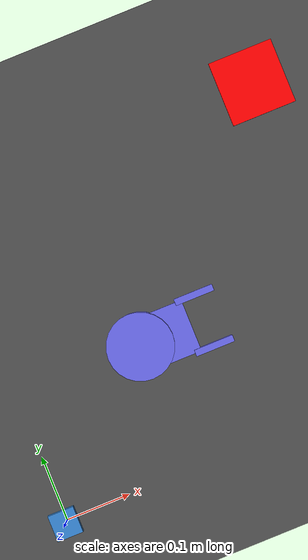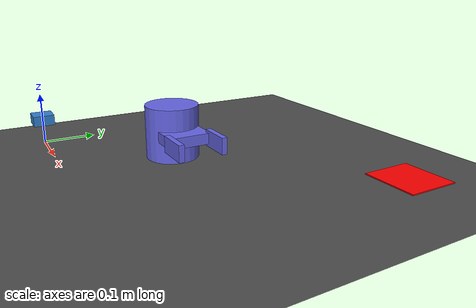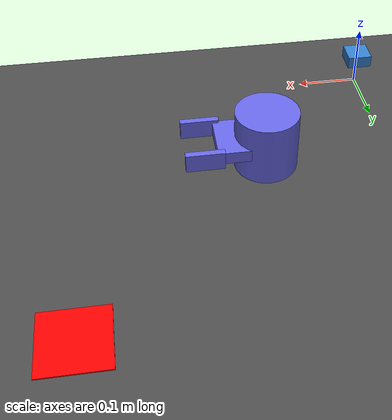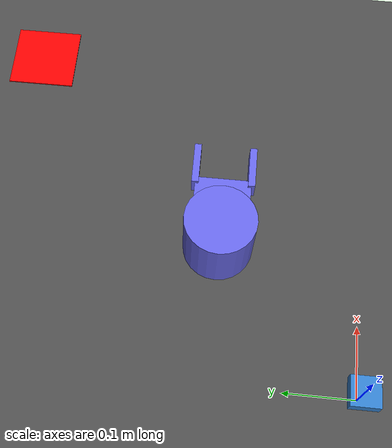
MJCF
<mujoco model="side_arm_bot">
    <compiler angle="radian"/>
    <option timestep="0.002" gravity="0 0 -9.81"/>

    <asset>
        <material name="ground_mat" rgba="0.3 0.3 0.3 1"/>
        <material name="block_mat" rgba="0.2 0.5 0.8 1"/>
        <material name="target_mat" rgba="1 0 0 1"/>
        <material name="robot_mat" rgba="0.4 0.4 0.9 1"/>
    </asset>

    <worldbody>
        <!-- Ground -->
        <geom name="ground" type="plane" size="2 2 0.1" pos="0 0 0" material="ground_mat"/>

        <!-- Target object -->
        <body name="object0" pos="0 0 0.05">
            <joint name="object0:joint" type="free"/>
            <geom name="object0_geom" type="box" size="0.020 0.020 0.01" material="block_mat" mass="0.1"/>
        </body>

        <!-- Target area -->
        <geom name="target_area" type="box" pos="0.5 0.5 0.001" size="0.05 0.05 0.001" material="target_mat" contype="0" conaffinity="0"/>

        <!-- Robot base (tall cylinder) -->
        <body name="robot_base" pos="0.2 0.2 0.05">
            <joint name="base_yaw" type="hinge" axis="0 0 1" limited="true" range="-3.14 3.14"/>
            <geom type="cylinder" size="0.05 0.05" material="robot_mat"/> <!-- Tall pillar -->

            <!-- Horizontal arm, mounted at the middle of the pillar (Z = 0) -->
            <body name="horizontal_arm" pos="0.05 0 0">
                <geom type="box" size="0.03 0.04 0.01" material="robot_mat"/>

                <!-- Gripper base -->
                <body name="gripper" pos="0.05 0 0">

                    <!-- Left finger -->
                    <body name="left_finger" pos="0 0.04 0">
                        <joint name="left_finger" type="slide" axis="0 1 0" limited="true" range="-0.025 0" />
                        <geom type="box" size="0.03 0.005 0.015" material="robot_mat"/>
                    </body>

                    <!-- Right finger -->
                    <body name="right_finger" pos="0 -0.04 0">
                        <joint name="right_finger" type="slide" axis="0 1 0" limited="true" range="0 0.025" />
                        <geom type="box" size="0.03 0.005 0.015" material="robot_mat"/>
                    </body>
                </body>
            </body>
        </body>
    </worldbody>

    <actuator>
        <velocity joint="base_yaw" gear="1" />
        <position joint="left_finger" kp="1"  ctrlrange="-0.025 0"/>
        <position joint="right_finger" kp="1" ctrlrange="0 0.025"/>
    </actuator>
</mujoco>
